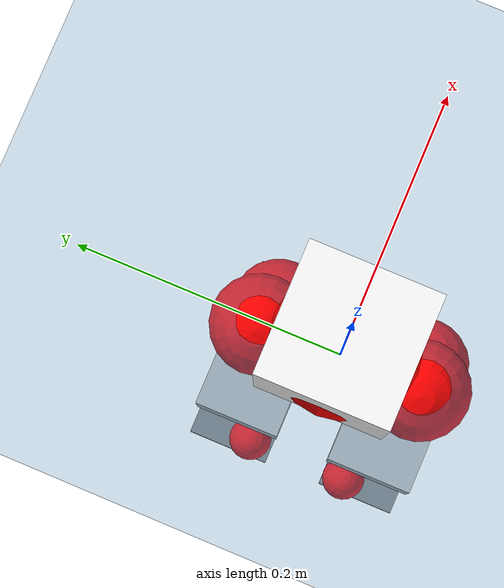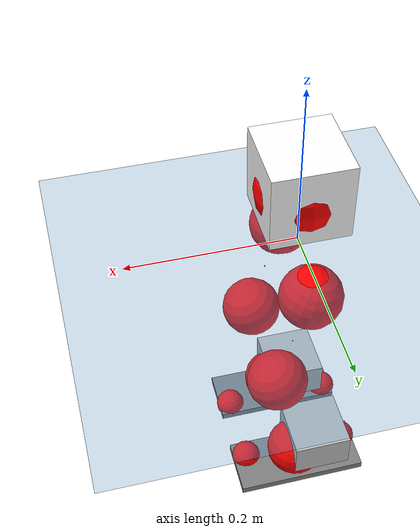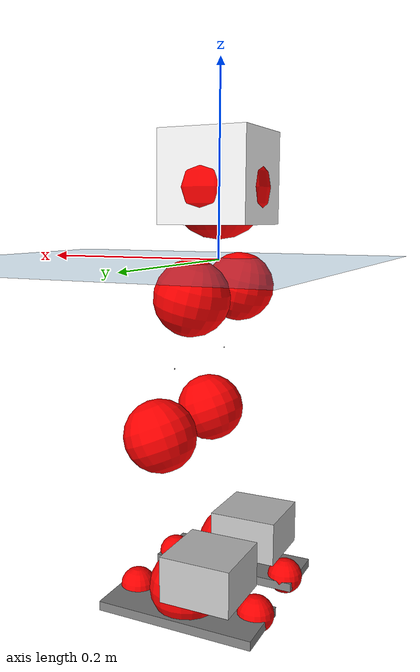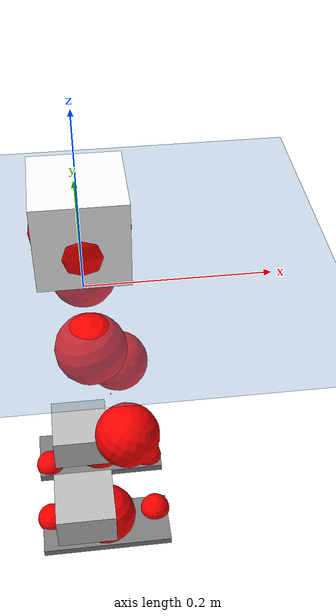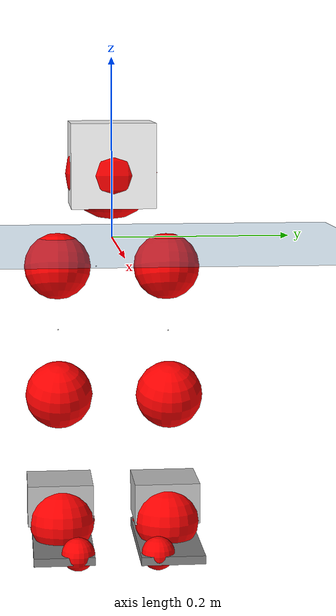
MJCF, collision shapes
<mujoco model="pi_12dof_release_v1">
  <compiler angle="radian" assetdir="assets" balanceinertia="true" inertiafromgeom="false"/>

  <option timestep="0.005" density="1.2" viscosity="2e-05"/>

  <size nkey="1"/>

  <visual>
    <quality shadowsize="8192"/>
    <map shadowclip="0.5"/>
  </visual>

  <default>
    <default class="/">
      <joint armature="0.01" damping="0.01" frictionloss="0.01"/>
      <geom contype="0" conaffinity="0" group="1" solref="-1000 -80"/>
      <site size="0.01 0.005 0.005" group="5"/>
      <general forcelimited="true" biastype="affine" gainprm="20" biasprm="0 -20 -0.5"/>
      <default class="foot">
        <geom size="0.0845 0.036 0.005" type="box" condim="6" group="4" priority="1" friction="0.9 0.2 0.2" solimp="0.015 1 0.005"/>
      </default>
      <default class="reward_collision_sphere">
        <geom group="5" rgba="1 0 0 1"/>
      </default>
    </default>
  </default>

  <asset>
    <texture type="skybox" colorspace="auto" name="//unnamed_texture_0" builtin="gradient" rgb1="0.95 0.95 0.95" rgb2="0.95 0.95 0.95" width="100" height="600"/>
    <texture type="2d" colorspace="auto" name="texplane" builtin="checker" rgb1="0.345 0.575 0.748" rgb2="0.345 0.575 0.748" markrgb="1 1 1" width="512" height="512"/>
    <material name="MatPlane" class="/" texture="texplane" texuniform="true" texrepeat="2 2" specular="0.9"/>
    <mesh name="baselink_1" class="/" file="baselink_1.STL"/>
    <mesh name="r_hip_pitch_link" class="/" file="r_hip_pitch_link.STL"/>
    <mesh name="r_hip_roll_link" class="/" file="r_hip_roll_link.STL"/>
    <mesh name="r_thigh_link" class="/" file="r_thigh_link.STL"/>
    <mesh name="r_calf_link" class="/" file="r_calf_link.STL"/>
    <mesh name="r_ankle_pitch_link" class="/" file="r_ankle_pitch_link.STL"/>
    <mesh name="r_ankle_roll_link" class="/" file="r_ankle_roll_link.STL"/>
    <mesh name="l_hip_pitch_link" class="/" file="l_hip_pitch_link.STL"/>
    <mesh name="l_hip_roll_link" class="/" file="l_hip_roll_link.STL"/>
    <mesh name="l_thigh_link" class="/" file="l_thigh_link.STL"/>
    <mesh name="l_calf_link" class="/" file="l_calf_link.STL"/>
    <mesh name="l_ankle_pitch_link" class="/" file="l_ankle_pitch_link.STL"/>
    <mesh name="l_ankle_roll_link" class="/" file="l_ankle_roll_link.STL"/>
  </asset>

  <worldbody>
    <geom name="floor" class="/" size="100 100 0.125" type="plane" group="0" material="MatPlane"/>
    <light name="toplight_shadow" class="/" pos="0 0 5" dir="0.0990148 0.0990148 -0.990148" type="directional" ambient="0.04 0.04 0.04" diffuse="0.55 0.55 0.55" specular="0.12 0.12 0.12"/>
    <light name="toplight_fill" class="/" pos="0 0 5" dir="0.0990148 0.0990148 -0.990148" type="directional" castshadow="false" ambient="0.04 0.04 0.04" diffuse="0.3 0.3 0.3" specular="0.08 0.08 0.08"/>
    <body name="trunk" pos="0.000535623 -0.000624269 0.000172419" quat="1 0.000137962 5.36933e-05 3.23571e-05">
      <inertial pos="0.00208224 -0.0005668 0.0414961" quat="0.692845 0.00699295 0.00746277 0.721014" mass="1.73772" diaginertia="0.00928097 0.00265746 0.00483014"/>
      <joint name="//unnamed_joint_0" type="free"/>
      <geom name="//unnamed_geom_1" class="/" type="mesh" density="0" rgba="1 1 1 1" mesh="baselink_1"/>
      <geom name="//unnamed_geom_2" class="/" size="0.0466947 0.0466947 0.0466947" pos="0 0 0.0823432" type="box" rgba="1 1 1 1"/>
      <geom name="//unnamed_geom_3" class="reward_collision_sphere" size="0.0513642" pos="0 0 0.0720503"/>
      <site name="imu" class="/" pos="0.000501255 -0.00208096 -0.00575462" size="0.00933895"/>
      <camera name="track" class="/" pos="0 -1.56879 0" quat="0.707107 0.707107 0 0" mode="trackcom"/>
      <camera name="ego_camera" class="/" pos="0.0740999 0 0.185272" quat="-0.5 -0.5 0.5 0.5"/>
      <body name="r_hip_pitch_link" pos="0.000503016 -0.0175346 -0.0328612" quat="0.992226 1.00922e-05 -0.124453 -0.000218182">
        <inertial pos="0.000214845 -0.0429788 -3.57553e-05" quat="-0.0192327 0.705745 -0.0285279 0.70763" mass="0.300825" diaginertia="0.000101964 2.94091e-05 9.59326e-05"/>
        <joint name="r_hip_pitch_joint" class="/" pos="0 0 0" axis="0.00324756 -0.999973 -0.00656876" range="-1.7291 1.23501" armature="0.00930856" damping="0.0178705" frictionloss="0.00929634"/>
        <geom name="//unnamed_geom_4" class="/" type="mesh" density="0" rgba="0.75294 0.75294 0.75294 1" mesh="r_hip_pitch_link"/>
        <geom name="//unnamed_geom_5" class="/" size="0.000466947 0.000466947 0.000466947" type="box" rgba="0.75294 0.75294 0.75294 1"/>
        <body name="r_hip_roll_link" pos="0.0010704 -0.0436502 0.000577751" quat="1 -0.000425115 -5.10128e-05 0.000194596">
          <inertial pos="-0.00124572 -0.000425955 -0.0648622" quat="0.705876 -0.0757802 -0.0855381 0.699056" mass="0.316569" diaginertia="0.000315281 8.30168e-05 0.000149382"/>
          <joint name="r_hip_roll_joint" class="/" pos="0 0 0" axis="-1 -9.25774e-05 9.67016e-05" range="-0.110336 0.503307" armature="0.00911336" damping="0.0113937" frictionloss="0.00956928"/>
          <geom name="//unnamed_geom_6" class="/" type="mesh" density="0" rgba="0.75294 0.75294 0.75294 1" mesh="r_hip_roll_link"/>
          <geom name="//unnamed_geom_7" class="/" size="0.000466947 0.000466947 0.000466947" type="box" rgba="0.75294 0.75294 0.75294 1"/>
          <geom name="//unnamed_geom_8" class="reward_collision_sphere" size="0.0373558"/>
          <body name="r_thigh_link" pos="-0.000155393 -0.000554584 -0.0715373" quat="1 -9.06992e-05 0.000121054 -9.90076e-05">
            <inertial pos="-0.000578186 0.000931419 -0.0487731" quat="0.736853 0.676038 0.0012534 -0.00429491" mass="0.0897667" diaginertia="0.000116798 2.78126e-05 6.60305e-05"/>
            <joint name="r_thigh_joint" class="/" pos="0 0 0" axis="-0.000473495 0.00259762 -0.999997" range="-0.31189 0.614696" armature="0.00940979" damping="0.00447205" frictionloss="0.00975224"/>
            <geom name="//unnamed_geom_9" class="/" type="mesh" density="0" rgba="0.75294 0.75294 0.75294 1" mesh="r_thigh_link"/>
            <geom name="//unnamed_geom_10" class="/" size="0.000466947 0.000466947 0.000466947" type="box" rgba="0.75294 0.75294 0.75294 1"/>
            <body name="r_calf_link" pos="-0.00138592 -4.08384e-05 -0.0725962" quat="0.947647 -1.32656e-05 0.319319 2.82727e-05">
              <inertial pos="0.000689559 -0.00105614 -0.0728854" quat="0.999958 -0.00246277 -0.00159136 0.00868438" mass="0.675188" diaginertia="0.0033698 0.00106257 0.00020434"/>
              <joint name="r_calf_joint" class="/" pos="0 0 0" axis="-0.00664996 -0.999968 0.00451538" range="-1.65124 0.64668" armature="0.00891689" damping="0.00689654" frictionloss="0.0090996"/>
              <geom name="//unnamed_geom_11" class="/" type="mesh" density="0" rgba="0.75294 0.75294 0.75294 1" mesh="r_calf_link"/>
              <geom name="//unnamed_geom_12" class="/" size="0.000466947 0.000466947 0.000466947" type="box" rgba="0.75294 0.75294 0.75294 1"/>
              <geom name="//unnamed_geom_13" class="reward_collision_sphere" size="0.0373558"/>
              <body name="r_ankle_pitch_link" pos="0.000648494 0.00134891 -0.144757" quat="0.980063 1.97022e-05 -0.198686 -6.84738e-05">
                <inertial pos="0.00574125 0.00452496 9.74235e-05" quat="0.00223079 0.707107 -0.00225404 0.7071" mass="0.142684" diaginertia="0.000287491 6.60399e-05 0.000137817"/>
                <joint name="r_ankle_pitch_joint" class="/" pos="0 0 0" axis="-0.00248279 -0.999996 0.00123717" range="-1.3131 0.499474" armature="0.00925285" damping="0.00496872" frictionloss="0.00959092"/>
                <geom name="//unnamed_geom_14" class="/" type="mesh" density="0" rgba="0.75294 0.75294 0.75294 1" mesh="r_ankle_pitch_link"/>
                <geom name="//unnamed_geom_15" class="/" size="0.0364219 0.0373558 0.0233474" type="box" rgba="0.75294 0.75294 0.75294 1"/>
                <body name="r_ankle_roll_link" pos="0.0750037 0.00169733 0.000491186" quat="1 0.000628838 -0.000203969 0.000234415">
                  <inertial pos="-0.0220504 0.000906355 -0.0149183" quat="0.559185 0.433031 0.433631 0.558356" mass="0.419134" diaginertia="0.00104631 0.00030548 0.000330538"/>
                  <joint name="r_ankle_roll_joint" class="/" pos="0 0 0" axis="-0.999984 0.00201748 0.00522134" range="-0.149849 0.141465" armature="0.00944484" damping="0.0114982" frictionloss="0.00910708"/>
                  <geom name="//unnamed_geom_16" class="/" type="mesh" density="0" rgba="0.75294 0.75294 0.75294 1" mesh="r_ankle_roll_link"/>
                  <geom name="//unnamed_geom_17" class="/" type="mesh" rgba="0.75294 0.75294 0.75294 1" mesh="r_ankle_roll_link"/>
                  <geom name="right_foot" class="foot" size="0.080462 0.0338586 0.00458377" pos="-0.050388 0 -0.0452888"/>
                  <geom name="//unnamed_geom_19" class="reward_collision_sphere" size="0.0373558" pos="-0.0494 0 -0.0205858"/>
                  <geom name="//unnamed_geom_20" class="reward_collision_sphere" size="0.0186779" pos="0.01482 0.0156879 -0.0411716"/>
                  <geom name="//unnamed_geom_21" class="reward_collision_sphere" size="0.0186779" pos="-0.11856 0.0156879 -0.0411716"/>
                  <site name="right_foot" class="foot" pos="-0.050388 0 -0.0452888" size="0.00933895"/>
                </body>
              </body>
            </body>
          </body>
        </body>
      </body>
      <body name="l_hip_pitch_link" pos="0.00149656 0.0187011 -0.0337566" quat="0.992222 -7.11118e-05 -0.12448 0.000103418">
        <inertial pos="0.00182764 0.0405507 -0.000223059" quat="-0.0391897 0.706072 0.0280036 0.7065" mass="0.320777" diaginertia="0.000120488 3.11812e-05 0.000115875"/>
        <joint name="l_hip_pitch_joint" class="/" pos="0 0 0" axis="-0.00287358 0.99997 -0.00721156" range="-1.26311 1.76254" armature="0.00882007" damping="0.0142331" frictionloss="0.00890429"/>
        <geom name="//unnamed_geom_22" class="/" type="mesh" density="0" rgba="0.75294 0.75294 0.75294 1" mesh="l_hip_pitch_link"/>
        <geom name="//unnamed_geom_23" class="/" size="0.000466947 0.000466947 0.000466947" type="box" rgba="0.75294 0.75294 0.75294 1"/>
        <body name="l_hip_roll_link" pos="-0.000740767 0.043189 0.000422057" quat="1 0.000332732 -1.62298e-05 -0.000297018">
          <inertial pos="-0.00177784 0.00116819 -0.0630087" quat="0.698912 -0.0742541 -0.0785693 0.706991" mass="0.31621" diaginertia="0.000314401 8.16401e-05 0.000144832"/>
          <joint name="l_hip_roll_joint" class="/" pos="0 0 0" axis="-0.999983 0.00411312 0.00405406" range="-0.508819 0.101034" armature="0.00935078" damping="0.00695539" frictionloss="0.00977668"/>
          <geom name="//unnamed_geom_24" class="/" type="mesh" density="0" rgba="0.75294 0.75294 0.75294 1" mesh="l_hip_roll_link"/>
          <geom name="//unnamed_geom_25" class="/" size="0.000466947 0.000466947 0.000466947" type="box" rgba="0.75294 0.75294 0.75294 1"/>
          <geom name="//unnamed_geom_26" class="reward_collision_sphere" size="0.0373558"/>
          <body name="l_thigh_link" pos="0.000334084 -3.30563e-05 -0.0728201" quat="1 -0.000397139 -3.57479e-05 0.000510267">
            <inertial pos="0.000901164 -0.00148949 -0.0474446" quat="0.674041 0.738681 -0.00435263 0.000902249" mass="0.0911896" diaginertia="0.00011814 2.84756e-05 6.69164e-05"/>
            <joint name="l_thigh_joint" class="/" pos="0 0 0" axis="-0.000201348 -0.000586953 -1" range="-0.621534 0.289984" armature="0.00941737" damping="0.000363652" frictionloss="0.0093724"/>
            <geom name="//unnamed_geom_27" class="/" type="mesh" density="0" rgba="0.75294 0.75294 0.75294 1" mesh="l_thigh_link"/>
            <geom name="//unnamed_geom_28" class="/" size="0.000466947 0.000466947 0.000466947" type="box" rgba="0.75294 0.75294 0.75294 1"/>
            <body name="l_calf_link" pos="-0.00151833 -0.00059197 -0.071996" quat="0.947694 -0.000129478 0.319182 8.88165e-05">
              <inertial pos="-0.000342289 0.00140901 -0.0724249" quat="0.999976 0.00683968 0.000197972 0.000811734" mass="0.657709" diaginertia="0.00325479 0.00102255 0.00019822"/>
              <joint name="l_calf_joint" class="/" pos="0 0 0" axis="-0.00481904 0.999988 -0.000122372" range="-0.662079 1.64047" armature="0.00938018" damping="0.00770728" frictionloss="0.0092792"/>
              <geom name="//unnamed_geom_29" class="/" type="mesh" density="0" rgba="0.75294 0.75294 0.75294 1" mesh="l_calf_link"/>
              <geom name="//unnamed_geom_30" class="/" size="0.000466947 0.000466947 0.000466947" type="box" rgba="0.75294 0.75294 0.75294 1"/>
              <geom name="//unnamed_geom_31" class="reward_collision_sphere" size="0.0373558"/>
              <body name="l_ankle_pitch_link" pos="0.000821212 0.000411258 -0.14341" quat="0.980056 -0.000103487 -0.198719 -0.000187271">
                <inertial pos="0.00465818 -0.000643254 0.000148258" quat="0.00311305 0.707261 0.00750284 0.706906" mass="0.143097" diaginertia="0.000291446 6.60773e-05 0.000141405"/>
                <joint name="l_ankle_pitch_joint" class="/" pos="0 0 0" axis="-0.00180187 0.999995 0.00268074" range="-0.520333 1.28755" armature="0.00931668" damping="0.00164403" frictionloss="0.00957533"/>
                <geom name="//unnamed_geom_32" class="/" type="mesh" density="0" rgba="0.75294 0.75294 0.75294 1" mesh="l_ankle_pitch_link"/>
                <geom name="//unnamed_geom_33" class="/" size="0.0364219 0.0373558 0.0233474" type="box" rgba="0.75294 0.75294 0.75294 1"/>
                <body name="l_ankle_roll_link" pos="0.0748168 -2.64123e-05 0.000145203" quat="1 1.16284e-05 3.29208e-06 3.16257e-06">
                  <inertial pos="-0.0250693 -0.00195795 -0.0139566" quat="0.559984 0.430485 0.435237 0.558274" mass="0.422917" diaginertia="0.00107366 0.000307078 0.000326296"/>
                  <joint name="l_ankle_roll_joint" class="/" pos="0 0 0" axis="-1 -0.000133422 -9.51059e-06" range="-0.14469 0.169076" armature="0.00954781" damping="0.0119525" frictionloss="0.00954274"/>
                  <geom name="//unnamed_geom_34" class="/" type="mesh" density="0" rgba="0.75294 0.75294 0.75294 1" mesh="l_ankle_roll_link"/>
                  <geom name="//unnamed_geom_35" class="/" type="mesh" rgba="0.75294 0.75294 0.75294 1" mesh="l_ankle_roll_link"/>
                  <geom name="left_foot" class="foot" size="0.0825015 0.0357953 0.0047281" pos="-0.050388 0 -0.0452888"/>
                  <geom name="//unnamed_geom_37" class="reward_collision_sphere" size="0.0373558" pos="-0.0494 0 -0.0205858"/>
                  <geom name="//unnamed_geom_38" class="reward_collision_sphere" size="0.0186779" pos="0.01482 -0.0156879 -0.0411716"/>
                  <geom name="//unnamed_geom_39" class="reward_collision_sphere" size="0.0186779" pos="-0.11856 -0.0156879 -0.0411716"/>
                  <site name="left_foot" class="foot" pos="-0.050388 0 -0.0452888" size="0.00933895"/>
                </body>
              </body>
            </body>
          </body>
        </body>
      </body>
    </body>
  </worldbody>

  <contact>
    <pair class="/" geom1="floor" geom2="right_foot" name="//unnamed_contact_1"/>
    <pair class="/" geom1="floor" geom2="left_foot" name="//unnamed_contact_0"/>
  </contact>

  <actuator>
    <general name="r_hip_pitch_joint" class="/" joint="r_hip_pitch_joint" forcerange="-18.9982 18.9982" gainprm="18.8042" biasprm="0 -18.8042 -0.465341"/>
    <general name="r_hip_roll_joint" class="/" joint="r_hip_roll_joint" forcerange="-20.163 20.163" gainprm="18.8042" biasprm="0 -18.8042 -0.465341"/>
    <general name="r_thigh_joint" class="/" joint="r_thigh_joint" forcerange="-20.063 20.063" gainprm="18.8042" biasprm="0 -18.8042 -0.465341"/>
    <general name="r_calf_joint" class="/" joint="r_calf_joint" forcerange="-20.4868 20.4868" gainprm="18.8042" biasprm="0 -18.8042 -0.465341"/>
    <general name="r_ankle_pitch_joint" class="/" joint="r_ankle_pitch_joint" forcerange="-19.4924 19.4924" gainprm="18.8042" biasprm="0 -18.8042 -0.465341"/>
    <general name="r_ankle_roll_joint" class="/" joint="r_ankle_roll_joint" forcerange="-19.5659 19.5659" gainprm="18.8042" biasprm="0 -18.8042 -0.465341"/>
    <general name="l_hip_pitch_joint" class="/" joint="l_hip_pitch_joint" forcerange="-19.5812 19.5812" gainprm="18.8042" biasprm="0 -18.8042 -0.465341"/>
    <general name="l_hip_roll_joint" class="/" joint="l_hip_roll_joint" forcerange="-19.5331 19.5331" gainprm="18.8042" biasprm="0 -18.8042 -0.465341"/>
    <general name="l_thigh_joint" class="/" joint="l_thigh_joint" forcerange="-19.0261 19.0261" gainprm="18.8042" biasprm="0 -18.8042 -0.465341"/>
    <general name="l_calf_joint" class="/" joint="l_calf_joint" forcerange="-19.6216 19.6216" gainprm="18.8042" biasprm="0 -18.8042 -0.465341"/>
    <general name="l_ankle_pitch_joint" class="/" joint="l_ankle_pitch_joint" forcerange="-19.8016 19.8016" gainprm="18.8042" biasprm="0 -18.8042 -0.465341"/>
    <general name="l_ankle_roll_joint" class="/" joint="l_ankle_roll_joint" forcerange="-18.924 18.924" gainprm="18.8042" biasprm="0 -18.8042 -0.465341"/>
  </actuator>

  <sensor>
    <gyro site="imu" name="imu_angular_velocity"/>
    <velocimeter site="imu" name="imu_linear_velocity"/>
    <framelinvel objtype="site" objname="left_foot" name="left_foot_global_linear_velocity"/>
    <framelinvel objtype="site" objname="right_foot" name="right_foot_global_linear_velocity"/>
  </sensor>

  <keyframe>
    <key name="home" qpos="0 0 0.291 1 0 0 0 0.4 0 0 -0.8 0.4 0 -0.4 0 0 0.8 -0.4 0"/>
  </keyframe>
</mujoco>
